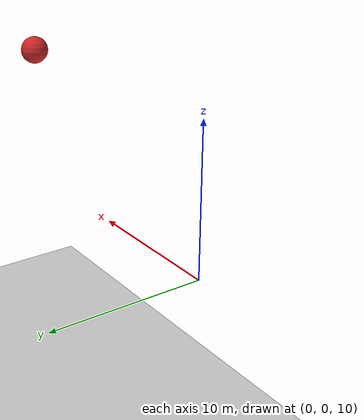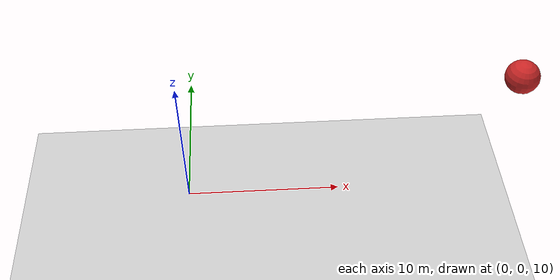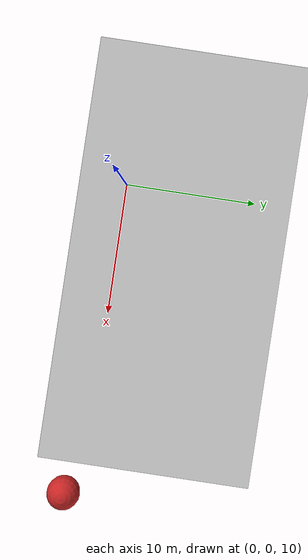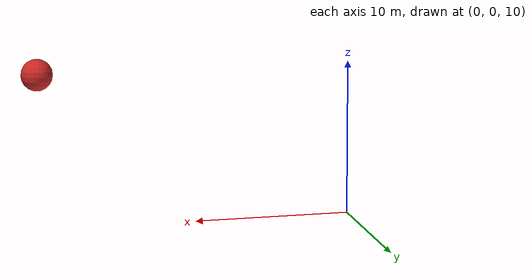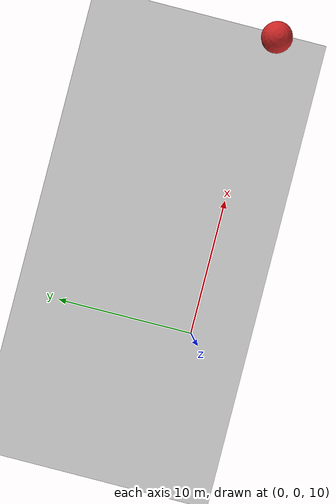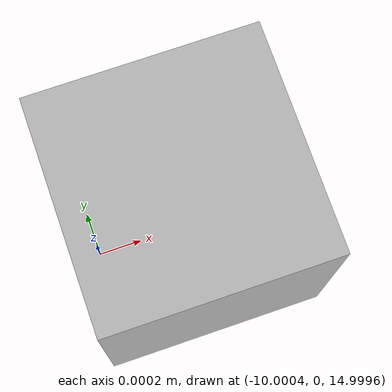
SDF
<?xml version="1.0" ?>
<sdf version="1.5">
	<world name="sky">
		<atmosphere type='adiabatic'/>
	    <scene>
	      <sky>
	        <clouds>
	          <speed>12</speed>
	        </clouds>
	      </sky>
	    </scene>

	    <include>
	    	<selfCollide>true</selfCollide>
	      <uri>model://particle_sphere</uri>
	      <name>particle_sphere1</name>
	      <pose>20 0 20 0 0 0</pose>
	    </include>

		<include>
	      <uri>model://ground_plane</uri>
	    </include>

	    <!-- Global light source -->
	    <include>
	      <uri>model://sun</uri>
	    </include>

	    <model name='camera'>
			<static>1</static>
		    <!-- camera -->
 			<link name='camera_link'>
				<pose>-10 0 15 0 0 0</pose>
				<inertial>
					<mass>0.1</mass>
					<inertia>
						<ixx>1</ixx>
						<ixy>0</ixy>
						<ixz>0</ixz>
						<iyy>1</iyy>
						<iyz>0</iyz>
						<izz>1</izz>
					</inertia>
				</inertial>
				<visual name='visual'>
					<geometry>
						<box>
							<size>0.001 0.001 0.001</size>
						</box>
					</geometry>
				</visual>
				<sensor type='depth' name='camera'>
					<camera name='overhead_cam'>

						<horizontal_fov>2.0</horizontal_fov>
						<image>
							<width>1280</width>
							<height>1280</height>
						</image>
						<clip>
							<near>0.1</near>
							<far>100</far>
						</clip>

					</camera>

					<plugin name="camera_plugin" filename="libgazebo_ros_openni_kinect.so">
			          <baseline>0.2</baseline>
			          <alwaysOn>true</alwaysOn>

			          <updateRate>0.0</updateRate>
			          <cameraName>camera_ir</cameraName>
			          <imageTopicName>/camera/color/image_raw</imageTopicName>
			          <cameraInfoTopicName>/camera/color/camera_info</cameraInfoTopicName>
			          <depthImageTopicName>/camera/depth/image_raw</depthImageTopicName>
			          <depthImageCameraInfoTopicName>/camera/depth/camera_info</depthImageCameraInfoTopicName>
			          <pointCloudTopicName>/camera/depth/points</pointCloudTopicName>
			          <frameName>camera_link</frameName>
			          <pointCloudCutoff>0.5</pointCloudCutoff>
			          <pointCloudCutoffMax>100.0</pointCloudCutoffMax>
			          <distortionK1>0</distortionK1>
			          <distortionK2>0</distortionK2>
			          <distortionK3>0</distortionK3>
			          <distortionT1>0</distortionT1>
			          <distortionT2>0</distortionT2>
			          <CxPrime>0</CxPrime>
			          <Cx>0</Cx>
			          <Cy>0</Cy>
			          <focalLength>0</focalLength>
			          <hackBaseline>0</hackBaseline>
			        </plugin>

					<always_on>1</always_on>
					<update_rate>30</update_rate>
					<visualize>true</visualize>

				</sensor>

				<gravity>1</gravity>
			</link>
		</model>

	    <physics name='default_physics' default='0' type='ode'>
	      <max_step_size>0.001</max_step_size>
	      <real_time_factor>1</real_time_factor>
	      <real_time_update_rate>1000</real_time_update_rate>
	    </physics>

    	<plugin name="counterAttack" filename="libcounterAttack.so"/>
	</world>
</sdf>

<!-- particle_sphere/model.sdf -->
<sdf version='1.4'>
  <model name="particle_sphere">
      <static>0</static>
      <link name='link'>
        <inertial>
          <mass>0.25</mass>
          <inertia>
            <ixx>9e-05</ixx>
            <ixy>0.000000</ixy>
            <ixz>0.000000</ixz>
            <iyy>9e-05</iyy>
            <iyz>0.000000</iyz>
            <izz>9e-05</izz>
          </inertia>
        </inertial>
        <collision name='collision'>
          <geometry>
            <sphere>
              <radius>0.03</radius>
            </sphere>
          </geometry>
          <surface>
            <friction>
              <ode>
                <mu>30.0</mu>
                <mu2>30.0</mu2>
              </ode>
            </friction>
            <contact>
              <ode>
                <kp>1000000.0</kp>
                <kd>100.0</kd>
                <max_vel>1.0</max_vel>
                <min_depth>0.002</min_depth>
              </ode>
            </contact>
          </surface>
        </collision>
        <visual name='visual'>
          <geometry>
            <sphere>
              <radius>1</radius>
            </sphere>
          </geometry>
          <material>
            <script>
              <uri>file://media/materials/scripts/gazebo.material</uri>
              <name>Gazebo/Red</name>
            </script>
          </material>
        </visual>
        <velocity_decay>
          <linear>0.000000</linear>
          <angular>0.000000</angular>
        </velocity_decay>
        <self_collide>0</self_collide>
        <kinematic>0</kinematic>
        <gravity>0</gravity>
      </link>
  </model>
</sdf>
